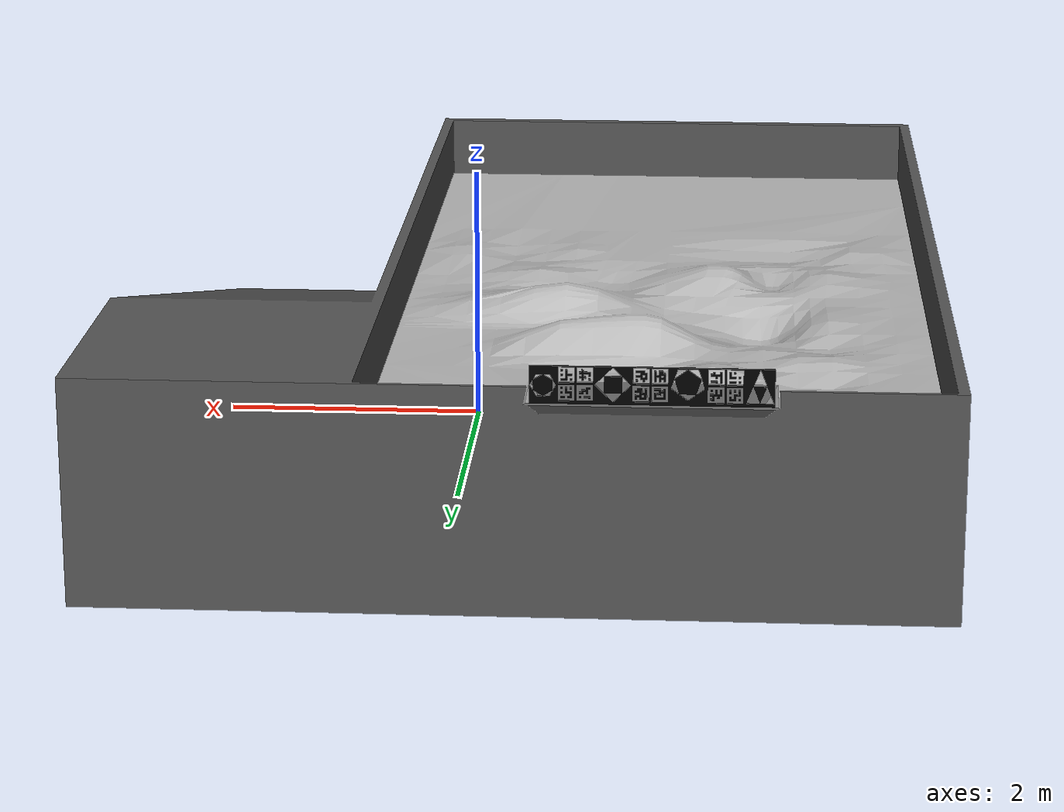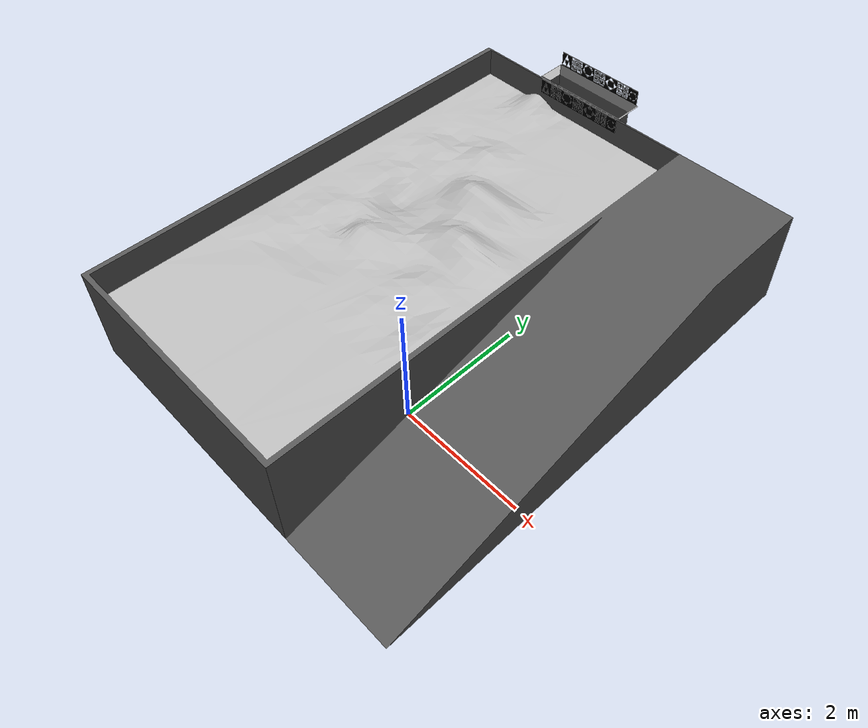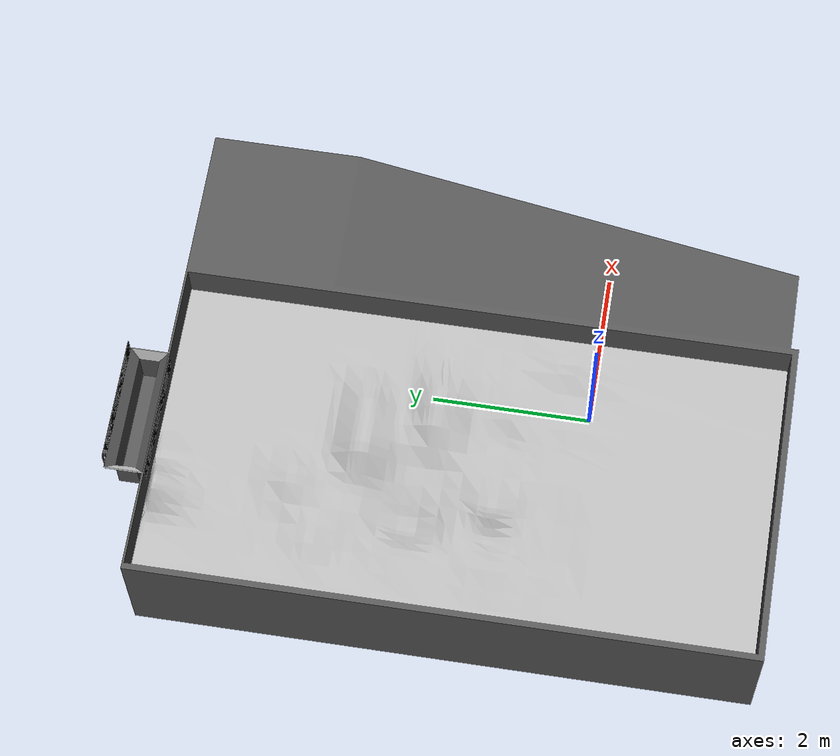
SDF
<sdf version='1.4'>
  <model name='LunArena2'>
    <link name='arena_base_link'>
      <collision name='arena_base_link_collision'>
        <pose>0 0 0 0 -0 0</pose>
        <geometry>
          <mesh>
            <scale>1 1 1</scale>
            <uri>model://LunArena2/meshes/whole_base.dae</uri>
          </mesh>
        </geometry>
      </collision>
      <visual name='arena_base_link_visual'>
        <pose>0 0 0 0 -0 0</pose>
        <geometry>
          <mesh>
            <scale>1 1 1</scale>
            <uri>model://LunArena2/meshes/whole_base.dae</uri>
          </mesh>
        </geometry>
      </visual>
    </link>

  </model>
</sdf>
